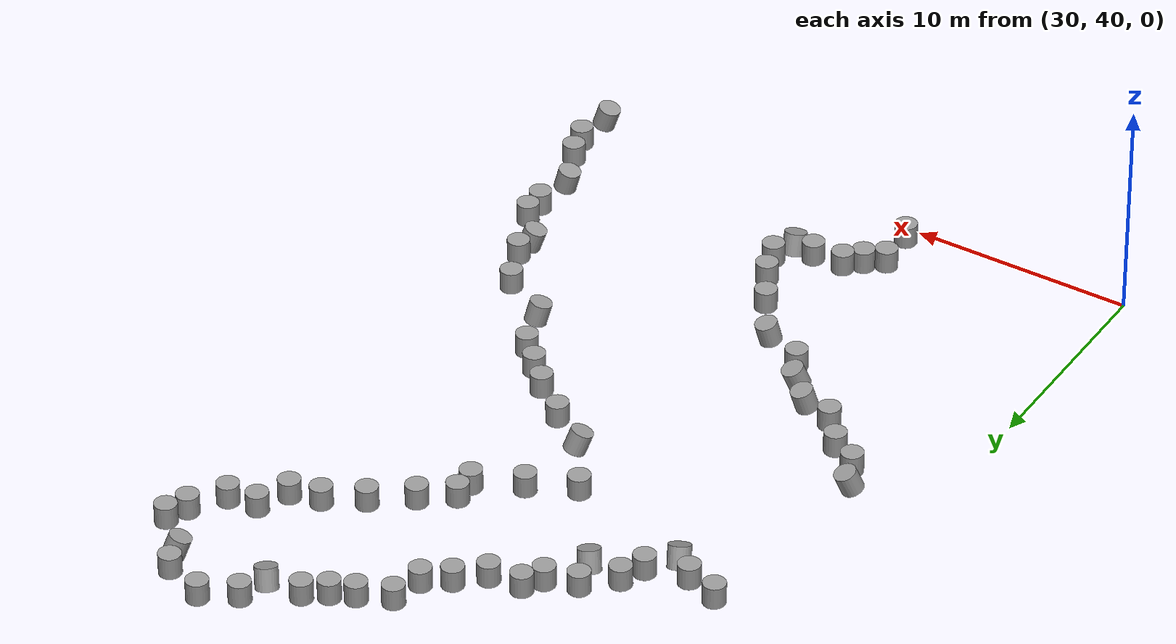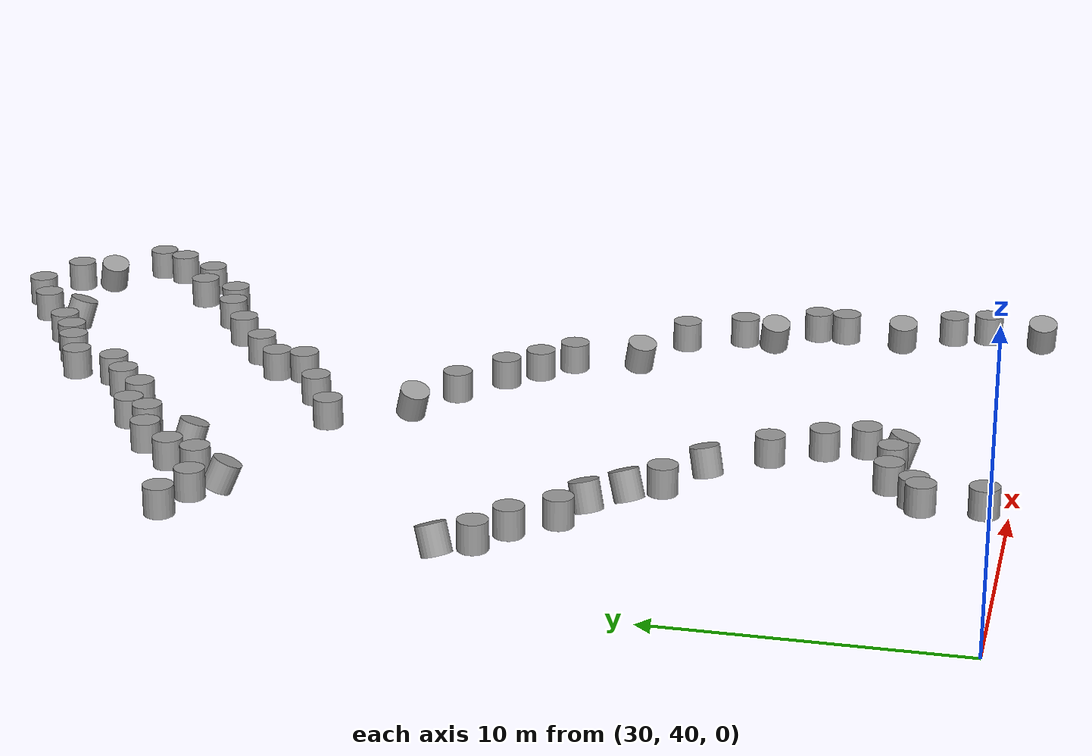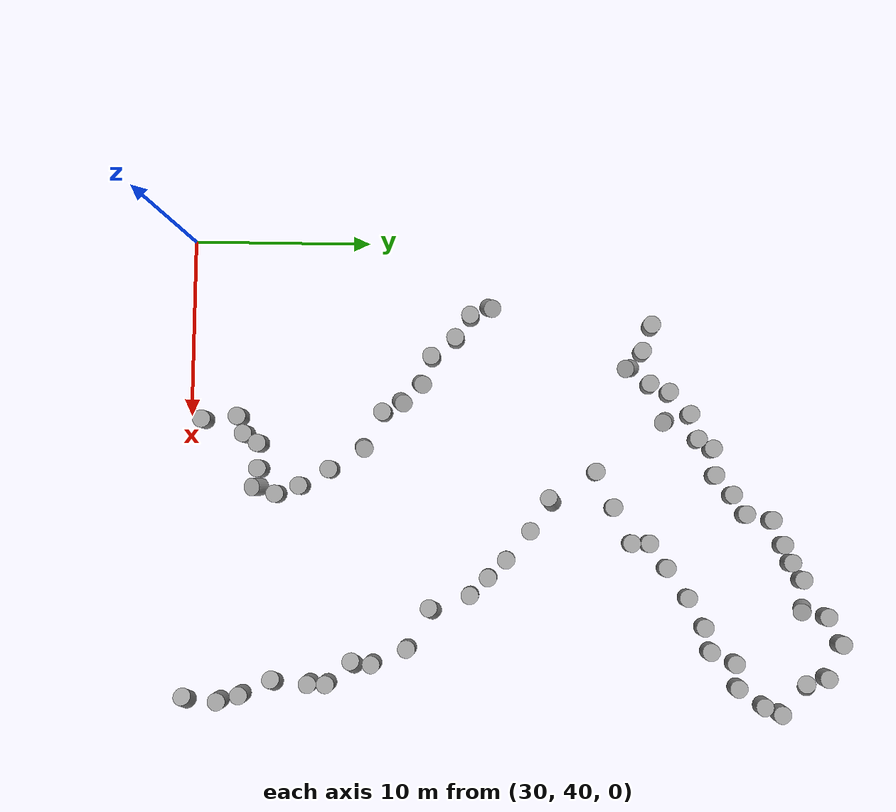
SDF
<sdf version="1.7">
 <world name="default">
  <model name="unit_cylinder_85_clone_244_clone_278">
   <pose>33.7154 56.9351 0.401347 -0.295228 0.251785 -0.052328</pose>
   <link name="link">
    <inertial>
     <mass>1</mass>
     <inertia><ixx>0.145833</ixx><ixy>0</ixy><ixz>0</ixz><iyy>0.145833</iyy><iyz>0</iyz><izz>0.125</izz></inertia>
    </inertial>
    <collision name="collision">
     <geometry><cylinder><radius>0.5</radius><length>1</length></cylinder></geometry>
    </collision>
    <visual name="visual">
     <geometry><cylinder><radius>0.5</radius><length>1</length></cylinder></geometry>
     <material>
      <script><name>Gazebo/Grey</name><uri>file://media/materials/scripts/gazebo.material</uri></script>
     </material>
    </visual>
   </link>
  </model>
  <model name="unit_cylinder_85_clone_244_clone_279">
   <pose>34.2118 55.8238 0.45004 1e-06 5e-06 0.000401</pose>
   <link name="link">
    <inertial>
     <mass>1</mass>
     <inertia><ixx>0.145833</ixx><ixy>0</ixy><ixz>0</ixz><iyy>0.145833</iyy><iyz>0</iyz><izz>0.125</izz></inertia>
    </inertial>
    <collision name="collision">
     <geometry><cylinder><radius>0.5</radius><length>1</length></cylinder></geometry>
    </collision>
    <visual name="visual">
     <geometry><cylinder><radius>0.5</radius><length>1</length></cylinder></geometry>
     <material>
      <script><name>Gazebo/Grey</name><uri>file://media/materials/scripts/gazebo.material</uri></script>
     </material>
    </visual>
   </link>
  </model>
  <model name="unit_cylinder_85_clone_244_clone_280">
   <pose>35.4906 55.0004 0.450054 -0.00038 0.000354 0.000411</pose>
   <link name="link">
    <inertial>
     <mass>1</mass>
     <inertia><ixx>0.145833</ixx><ixy>0</ixy><ixz>0</ixz><iyy>0.145833</iyy><iyz>0</iyz><izz>0.125</izz></inertia>
    </inertial>
    <collision name="collision">
     <geometry><cylinder><radius>0.5</radius><length>1</length></cylinder></geometry>
    </collision>
    <visual name="visual">
     <geometry><cylinder><radius>0.5</radius><length>1</length></cylinder></geometry>
     <material>
      <script><name>Gazebo/Grey</name><uri>file://media/materials/scripts/gazebo.material</uri></script>
     </material>
    </visual>
   </link>
  </model>
  <model name="unit_cylinder_85_clone_244_clone_281">
   <pose>36.5597 53.6582 0.450042 1e-06 -2e-06 0.000852</pose>
   <link name="link">
    <inertial>
     <mass>1</mass>
     <inertia><ixx>0.145833</ixx><ixy>0</ixy><ixz>0</ixz><iyy>0.145833</iyy><iyz>0</iyz><izz>0.125</izz></inertia>
    </inertial>
    <collision name="collision">
     <geometry><cylinder><radius>0.5</radius><length>1</length></cylinder></geometry>
    </collision>
    <visual name="visual">
     <geometry><cylinder><radius>0.5</radius><length>1</length></cylinder></geometry>
     <material>
      <script><name>Gazebo/Grey</name><uri>file://media/materials/scripts/gazebo.material</uri></script>
     </material>
    </visual>
   </link>
  </model>
  <model name="unit_cylinder_85_clone_244_clone_282">
   <pose>38.0921 53.1044 0.372479 -0.21951 0.192812 -0.029025</pose>
   <link name="link">
    <inertial>
     <mass>1</mass>
     <inertia><ixx>0.145833</ixx><ixy>0</ixy><ixz>0</ixz><iyy>0.145833</iyy><iyz>0</iyz><izz>0.125</izz></inertia>
    </inertial>
    <collision name="collision">
     <geometry><cylinder><radius>0.5</radius><length>1</length></cylinder></geometry>
    </collision>
    <visual name="visual">
     <geometry><cylinder><radius>0.5</radius><length>1</length></cylinder></geometry>
     <material>
      <script><name>Gazebo/Grey</name><uri>file://media/materials/scripts/gazebo.material</uri></script>
     </material>
    </visual>
   </link>
  </model>
  <model name="unit_cylinder_85_clone_244_clone_283">
   <pose>39.7463 50.9549 0.450049 -1e-06 8e-06 0.000412</pose>
   <link name="link">
    <inertial>
     <mass>1</mass>
     <inertia><ixx>0.145833</ixx><ixy>0</ixy><ixz>0</ixz><iyy>0.145833</iyy><iyz>0</iyz><izz>0.125</izz></inertia>
    </inertial>
    <collision name="collision">
     <geometry><cylinder><radius>0.5</radius><length>1</length></cylinder></geometry>
    </collision>
    <visual name="visual">
     <geometry><cylinder><radius>0.5</radius><length>1</length></cylinder></geometry>
     <material>
      <script><name>Gazebo/Grey</name><uri>file://media/materials/scripts/gazebo.material</uri></script>
     </material>
    </visual>
   </link>
  </model>
  <model name="unit_cylinder_85_clone_244_clone_284">
   <pose>41.7536 49.8863 0.358774 -0.188602 0.167695 -0.020141</pose>
   <link name="link">
    <inertial>
     <mass>1</mass>
     <inertia><ixx>0.145833</ixx><ixy>0</ixy><ixz>0</ixz><iyy>0.145833</iyy><iyz>0</iyz><izz>0.125</izz></inertia>
    </inertial>
    <collision name="collision">
     <geometry><cylinder><radius>0.5</radius><length>1</length></cylinder></geometry>
    </collision>
    <visual name="visual">
     <geometry><cylinder><radius>0.5</radius><length>1</length></cylinder></geometry>
     <material>
      <script><name>Gazebo/Grey</name><uri>file://media/materials/scripts/gazebo.material</uri></script>
     </material>
    </visual>
   </link>
  </model>
  <model name="unit_cylinder_85_clone_244_clone_285">
   <pose>43 48 0.450053 -1e-06 1.2e-05 0.000413</pose>
   <link name="link">
    <inertial>
     <mass>1</mass>
     <inertia><ixx>0.145833</ixx><ixy>0</ixy><ixz>0</ixz><iyy>0.145833</iyy><iyz>0</iyz><izz>0.125</izz></inertia>
    </inertial>
    <collision name="collision">
     <geometry><cylinder><radius>0.5</radius><length>1</length></cylinder></geometry>
    </collision>
    <visual name="visual">
     <geometry><cylinder><radius>0.5</radius><length>1</length></cylinder></geometry>
     <material>
      <script><name>Gazebo/Grey</name><uri>file://media/materials/scripts/gazebo.material</uri></script>
     </material>
    </visual>
   </link>
  </model>
  <model name="unit_cylinder_85_clone_244_clone_286">
   <pose>39.1416 52.0091 0.397449 -0.282988 0.244258 -0.044928</pose>
   <link name="link">
    <inertial>
     <mass>1</mass>
     <inertia><ixx>0.145833</ixx><ixy>0</ixy><ixz>0</ixz><iyy>0.145833</iyy><iyz>0</iyz><izz>0.125</izz></inertia>
    </inertial>
    <collision name="collision">
     <geometry><cylinder><radius>0.5</radius><length>1</length></cylinder></geometry>
    </collision>
    <visual name="visual">
     <geometry><cylinder><radius>0.5</radius><length>1</length></cylinder></geometry>
     <material>
      <script><name>Gazebo/Grey</name><uri>file://media/materials/scripts/gazebo.material</uri></script>
     </material>
    </visual>
   </link>
  </model>
  <model name="unit_cylinder_85_clone_244_clone_287">
   <pose>43.9423 46.3315 0.450051 -3e-06 -1e-05 0.000415</pose>
   <link name="link">
    <inertial>
     <mass>1</mass>
     <inertia><ixx>0.145833</ixx><ixy>0</ixy><ixz>0</ixz><iyy>0.145833</iyy><iyz>0</iyz><izz>0.125</izz></inertia>
    </inertial>
    <collision name="collision">
     <geometry><cylinder><radius>0.5</radius><length>1</length></cylinder></geometry>
    </collision>
    <visual name="visual">
     <geometry><cylinder><radius>0.5</radius><length>1</length></cylinder></geometry>
     <material>
      <script><name>Gazebo/Grey</name><uri>file://media/materials/scripts/gazebo.material</uri></script>
     </material>
    </visual>
   </link>
  </model>
  <model name="unit_cylinder_85_clone_244_clone_288">
   <pose>44.411 45 0.450037 1.8e-05 -3e-06 0.000486</pose>
   <link name="link">
    <inertial>
     <mass>1</mass>
     <inertia><ixx>0.145833</ixx><ixy>0</ixy><ixz>0</ixz><iyy>0.145833</iyy><iyz>0</iyz><izz>0.125</izz></inertia>
    </inertial>
    <collision name="collision">
     <geometry><cylinder><radius>0.5</radius><length>1</length></cylinder></geometry>
    </collision>
    <visual name="visual">
     <geometry><cylinder><radius>0.5</radius><length>1</length></cylinder></geometry>
     <material>
      <script><name>Gazebo/Grey</name><uri>file://media/materials/scripts/gazebo.material</uri></script>
     </material>
    </visual>
   </link>
  </model>
  <model name="unit_cylinder_85_clone_244_clone_289">
   <pose>44.0265 43.8452 0.379184 0.30818 0.046155 0.025361</pose>
   <link name="link">
    <inertial>
     <mass>1</mass>
     <inertia><ixx>0.145833</ixx><ixy>0</ixy><ixz>0</ixz><iyy>0.145833</iyy><iyz>0</iyz><izz>0.125</izz></inertia>
    </inertial>
    <collision name="collision">
     <geometry><cylinder><radius>0.5</radius><length>1</length></cylinder></geometry>
    </collision>
    <visual name="visual">
     <geometry><cylinder><radius>0.5</radius><length>1</length></cylinder></geometry>
     <material>
      <script><name>Gazebo/Grey</name><uri>file://media/materials/scripts/gazebo.material</uri></script>
     </material>
    </visual>
   </link>
  </model>
  <model name="unit_cylinder_85_clone_244_clone_290">
   <pose>42.9997 43.9999 0.450012 0.000339 6.2e-05 0.000918</pose>
   <link name="link">
    <inertial>
     <mass>1</mass>
     <inertia><ixx>0.145833</ixx><ixy>0</ixy><ixz>0</ixz><iyy>0.145833</iyy><iyz>0</iyz><izz>0.125</izz></inertia>
    </inertial>
    <collision name="collision">
     <geometry><cylinder><radius>0.5</radius><length>1</length></cylinder></geometry>
    </collision>
    <visual name="visual">
     <geometry><cylinder><radius>0.5</radius><length>1</length></cylinder></geometry>
     <material>
      <script><name>Gazebo/Grey</name><uri>file://media/materials/scripts/gazebo.material</uri></script>
     </material>
    </visual>
   </link>
  </model>
  <model name="unit_cylinder_85_clone_244_clone_291">
   <pose>41.0187 43.0978 0.250015 -6e-06 2.2e-05 0.038629</pose>
   <link name="link">
    <inertial>
     <mass>1</mass>
     <inertia><ixx>0.145833</ixx><ixy>0</ixy><ixz>0</ixz><iyy>0.145833</iyy><iyz>0</iyz><izz>0.125</izz></inertia>
    </inertial>
    <collision name="collision">
     <geometry><cylinder><radius>0.5</radius><length>1</length></cylinder></geometry>
    </collision>
    <visual name="visual">
     <geometry><cylinder><radius>0.5</radius><length>1</length></cylinder></geometry>
     <material>
      <script><name>Gazebo/Grey</name><uri>file://media/materials/scripts/gazebo.material</uri></script>
     </material>
    </visual>
   </link>
  </model>
  <model name="unit_cylinder_85_clone_244_clone_292">
   <pose>40.0673 42.7899 0.449997 -6e-06 4.9e-05 -0.081355</pose>
   <link name="link">
    <inertial>
     <mass>1</mass>
     <inertia><ixx>0.145833</ixx><ixy>0</ixy><ixz>0</ixz><iyy>0.145833</iyy><iyz>0</iyz><izz>0.125</izz></inertia>
    </inertial>
    <collision name="collision">
     <geometry><cylinder><radius>0.5</radius><length>1</length></cylinder></geometry>
    </collision>
    <visual name="visual">
     <geometry><cylinder><radius>0.5</radius><length>1</length></cylinder></geometry>
     <material>
      <script><name>Gazebo/Grey</name><uri>file://media/materials/scripts/gazebo.material</uri></script>
     </material>
    </visual>
   </link>
  </model>
  <model name="unit_cylinder_85_clone_244_clone_293">
   <pose>41.5678 43.956 0.450025 1.5e-05 -2e-06 -0.079999</pose>
   <link name="link">
    <inertial>
     <mass>1</mass>
     <inertia><ixx>0.145833</ixx><ixy>0</ixy><ixz>0</ixz><iyy>0.145833</iyy><iyz>0</iyz><izz>0.125</izz></inertia>
    </inertial>
    <collision name="collision">
     <geometry><cylinder><radius>0.5</radius><length>1</length></cylinder></geometry>
    </collision>
    <visual name="visual">
     <geometry><cylinder><radius>0.5</radius><length>1</length></cylinder></geometry>
     <material>
      <script><name>Gazebo/Grey</name><uri>file://media/materials/scripts/gazebo.material</uri></script>
     </material>
    </visual>
   </link>
  </model>
  <model name="unit_cylinder_85_clone_244_clone_294">
   <pose>40.2405 40.8025 0.450037 -1.2e-05 5e-06 0.00041</pose>
   <link name="link">
    <inertial>
     <mass>1</mass>
     <inertia><ixx>0.145833</ixx><ixy>0</ixy><ixz>0</ixz><iyy>0.145833</iyy><iyz>0</iyz><izz>0.125</izz></inertia>
    </inertial>
    <collision name="collision">
     <geometry><cylinder><radius>0.5</radius><length>1</length></cylinder></geometry>
    </collision>
    <visual name="visual">
     <geometry><cylinder><radius>0.5</radius><length>1</length></cylinder></geometry>
     <material>
      <script><name>Gazebo/Grey</name><uri>file://media/materials/scripts/gazebo.material</uri></script>
     </material>
    </visual>
   </link>
  </model>
  <model name="unit_cylinder_85_clone_244_clone_337">
   <pose>34.6619 66.079 0.456652 0.003726 -0.003602 0.000687</pose>
   <link name="link">
    <inertial>
     <mass>1</mass>
     <inertia><ixx>0.145833</ixx><ixy>0</ixy><ixz>0</ixz><iyy>0.145833</iyy><iyz>0</iyz><izz>0.125</izz></inertia>
    </inertial>
    <collision name="collision">
     <geometry><cylinder><radius>0.5</radius><length>1</length></cylinder></geometry>
    </collision>
    <visual name="visual">
     <geometry><cylinder><radius>0.5</radius><length>1</length></cylinder></geometry>
     <material>
      <script><name>Gazebo/Grey</name><uri>file://media/materials/scripts/gazebo.material</uri></script>
     </material>
    </visual>
   </link>
  </model>
  <model name="unit_cylinder_85_clone_244_clone_338">
   <pose>37.0888 64.7965 0.411942 0.394273 0.165878 0.059259</pose>
   <link name="link">
    <inertial>
     <mass>1</mass>
     <inertia><ixx>0.145833</ixx><ixy>0</ixy><ixz>0</ixz><iyy>0.145833</iyy><iyz>0</iyz><izz>0.125</izz></inertia>
    </inertial>
    <collision name="collision">
     <geometry><cylinder><radius>0.5</radius><length>1</length></cylinder></geometry>
    </collision>
    <visual name="visual">
     <geometry><cylinder><radius>0.5</radius><length>1</length></cylinder></geometry>
     <material>
      <script><name>Gazebo/Grey</name><uri>file://media/materials/scripts/gazebo.material</uri></script>
     </material>
    </visual>
   </link>
  </model>
  <model name="unit_cylinder_85_clone_244_clone_339">
   <pose>38.0015 65.9983 0.452402 0.003156 0.002335 0.000786</pose>
   <link name="link">
    <inertial>
     <mass>1</mass>
     <inertia><ixx>0.145833</ixx><ixy>0</ixy><ixz>0</ixz><iyy>0.145833</iyy><iyz>0</iyz><izz>0.125</izz></inertia>
    </inertial>
    <collision name="collision">
     <geometry><cylinder><radius>0.5</radius><length>1</length></cylinder></geometry>
    </collision>
    <visual name="visual">
     <geometry><cylinder><radius>0.5</radius><length>1</length></cylinder></geometry>
     <material>
      <script><name>Gazebo/Grey</name><uri>file://media/materials/scripts/gazebo.material</uri></script>
     </material>
    </visual>
   </link>
  </model>
  <model name="unit_cylinder_85_clone_244_clone_340">
   <pose>40.0993 66.8648 0.38748 0.275919 0.197597 0.03147</pose>
   <link name="link">
    <inertial>
     <mass>1</mass>
     <inertia><ixx>0.145833</ixx><ixy>0</ixy><ixz>0</ixz><iyy>0.145833</iyy><iyz>0</iyz><izz>0.125</izz></inertia>
    </inertial>
    <collision name="collision">
     <geometry><cylinder><radius>0.5</radius><length>1</length></cylinder></geometry>
    </collision>
    <visual name="visual">
     <geometry><cylinder><radius>0.5</radius><length>1</length></cylinder></geometry>
     <material>
      <script><name>Gazebo/Grey</name><uri>file://media/materials/scripts/gazebo.material</uri></script>
     </material>
    </visual>
   </link>
  </model>
  <model name="unit_cylinder_85_clone_244_clone_341">
   <pose>43.1257 69.7006 0.451301 1e-06 7e-06 0.000423</pose>
   <link name="link">
    <inertial>
     <mass>1</mass>
     <inertia><ixx>0.145833</ixx><ixy>0</ixy><ixz>0</ixz><iyy>0.145833</iyy><iyz>0</iyz><izz>0.125</izz></inertia>
    </inertial>
    <collision name="collision">
     <geometry><cylinder><radius>0.5</radius><length>1</length></cylinder></geometry>
    </collision>
    <visual name="visual">
     <geometry><cylinder><radius>0.5</radius><length>1</length></cylinder></geometry>
     <material>
      <script><name>Gazebo/Grey</name><uri>file://media/materials/scripts/gazebo.material</uri></script>
     </material>
    </visual>
   </link>
  </model>
  <model name="unit_cylinder_85_clone_244_clone_342">
   <pose>45.3006 71.4298 0.451297 3e-06 5e-06 0.000423</pose>
   <link name="link">
    <inertial>
     <mass>1</mass>
     <inertia><ixx>0.145833</ixx><ixy>0</ixy><ixz>0</ixz><iyy>0.145833</iyy><iyz>0</iyz><izz>0.125</izz></inertia>
    </inertial>
    <collision name="collision">
     <geometry><cylinder><radius>0.5</radius><length>1</length></cylinder></geometry>
    </collision>
    <visual name="visual">
     <geometry><cylinder><radius>0.5</radius><length>1</length></cylinder></geometry>
     <material>
      <script><name>Gazebo/Grey</name><uri>file://media/materials/scripts/gazebo.material</uri></script>
     </material>
    </visual>
   </link>
  </model>
  <model name="unit_cylinder_85_clone_244_clone_344">
   <pose>50.6179 74.6493 0.385512 0.270314 0.194345 0.029019</pose>
   <link name="link">
    <inertial>
     <mass>1</mass>
     <inertia><ixx>0.145833</ixx><ixy>0</ixy><ixz>0</ixz><iyy>0.145833</iyy><iyz>0</iyz><izz>0.125</izz></inertia>
    </inertial>
    <collision name="collision">
     <geometry><cylinder><radius>0.5</radius><length>1</length></cylinder></geometry>
    </collision>
    <visual name="visual">
     <geometry><cylinder><radius>0.5</radius><length>1</length></cylinder></geometry>
     <material>
      <script><name>Gazebo/Grey</name><uri>file://media/materials/scripts/gazebo.material</uri></script>
     </material>
    </visual>
   </link>
  </model>
  <model name="unit_cylinder_85_clone_244_clone_345">
   <pose>52.5133 76.813 0.45129 7e-06 1e-06 0.000423</pose>
   <link name="link">
    <inertial>
     <mass>1</mass>
     <inertia><ixx>0.145833</ixx><ixy>0</ixy><ixz>0</ixz><iyy>0.145833</iyy><iyz>0</iyz><izz>0.125</izz></inertia>
    </inertial>
    <collision name="collision">
     <geometry><cylinder><radius>0.5</radius><length>1</length></cylinder></geometry>
    </collision>
    <visual name="visual">
     <geometry><cylinder><radius>0.5</radius><length>1</length></cylinder></geometry>
     <material>
      <script><name>Gazebo/Grey</name><uri>file://media/materials/scripts/gazebo.material</uri></script>
     </material>
    </visual>
   </link>
  </model>
  <model name="unit_cylinder_85_clone_244_clone_346">
   <pose>54.415 76 0.451281 3.5e-05 -4e-05 0.000342</pose>
   <link name="link">
    <inertial>
     <mass>1</mass>
     <inertia><ixx>0.145833</ixx><ixy>0</ixy><ixz>0</ixz><iyy>0.145833</iyy><iyz>0</iyz><izz>0.125</izz></inertia>
    </inertial>
    <collision name="collision">
     <geometry><cylinder><radius>0.5</radius><length>1</length></cylinder></geometry>
    </collision>
    <visual name="visual">
     <geometry><cylinder><radius>0.5</radius><length>1</length></cylinder></geometry>
     <material>
      <script><name>Gazebo/Grey</name><uri>file://media/materials/scripts/gazebo.material</uri></script>
     </material>
    </visual>
   </link>
  </model>
  <model name="unit_cylinder_85_clone_244_clone_347">
   <pose>56.4101 73.4188 0.451404 -0.000343 1.6e-05 0.001553</pose>
   <link name="link">
    <inertial>
     <mass>1</mass>
     <inertia><ixx>0.145833</ixx><ixy>0</ixy><ixz>0</ixz><iyy>0.145833</iyy><iyz>0</iyz><izz>0.125</izz></inertia>
    </inertial>
    <collision name="collision">
     <geometry><cylinder><radius>0.5</radius><length>1</length></cylinder></geometry>
    </collision>
    <visual name="visual">
     <geometry><cylinder><radius>0.5</radius><length>1</length></cylinder></geometry>
     <material>
      <script><name>Gazebo/Grey</name><uri>file://media/materials/scripts/gazebo.material</uri></script>
     </material>
    </visual>
   </link>
  </model>
  <model name="unit_cylinder_85_clone_244_clone_348">
   <pose>56 72.4474 0.452031 -0.000916 6.3e-05 0.000435</pose>
   <link name="link">
    <inertial>
     <mass>1</mass>
     <inertia><ixx>0.145833</ixx><ixy>0</ixy><ixz>0</ixz><iyy>0.145833</iyy><iyz>0</iyz><izz>0.125</izz></inertia>
    </inertial>
    <collision name="collision">
     <geometry><cylinder><radius>0.5</radius><length>1</length></cylinder></geometry>
    </collision>
    <visual name="visual">
     <geometry><cylinder><radius>0.5</radius><length>1</length></cylinder></geometry>
     <material>
      <script><name>Gazebo/Grey</name><uri>file://media/materials/scripts/gazebo.material</uri></script>
     </material>
    </visual>
   </link>
  </model>
  <model name="unit_cylinder_85_clone_244_clone_349">
   <pose>53.6468 70.8564 0.452218 -0.002738 -0.002069 1.7e-05</pose>
   <link name="link">
    <inertial>
     <mass>1</mass>
     <inertia><ixx>0.145833</ixx><ixy>0</ixy><ixz>0</ixz><iyy>0.145833</iyy><iyz>0</iyz><izz>0.125</izz></inertia>
    </inertial>
    <collision name="collision">
     <geometry><cylinder><radius>0.5</radius><length>1</length></cylinder></geometry>
    </collision>
    <visual name="visual">
     <geometry><cylinder><radius>0.5</radius><length>1</length></cylinder></geometry>
     <material>
      <script><name>Gazebo/Grey</name><uri>file://media/materials/scripts/gazebo.material</uri></script>
     </material>
    </visual>
   </link>
  </model>
  <model name="unit_cylinder_85_clone_244_clone_350">
   <pose>51.6547 69.1214 0.452898 -0.002829 -0.002136 0.000353</pose>
   <link name="link">
    <inertial>
     <mass>1</mass>
     <inertia><ixx>0.145833</ixx><ixy>0</ixy><ixz>0</ixz><iyy>0.145833</iyy><iyz>0</iyz><izz>0.125</izz></inertia>
    </inertial>
    <collision name="collision">
     <geometry><cylinder><radius>0.5</radius><length>1</length></cylinder></geometry>
    </collision>
    <visual name="visual">
     <geometry><cylinder><radius>0.5</radius><length>1</length></cylinder></geometry>
     <material>
      <script><name>Gazebo/Grey</name><uri>file://media/materials/scripts/gazebo.material</uri></script>
     </material>
    </visual>
   </link>
  </model>
  <model name="unit_cylinder_85_clone_244_clone_351">
   <pose>50.0233 68.1917 0.452006 -0.002697 -0.002038 9.9e-05</pose>
   <link name="link">
    <inertial>
     <mass>1</mass>
     <inertia><ixx>0.145833</ixx><ixy>0</ixy><ixz>0</ixz><iyy>0.145833</iyy><iyz>0</iyz><izz>0.125</izz></inertia>
    </inertial>
    <collision name="collision">
     <geometry><cylinder><radius>0.5</radius><length>1</length></cylinder></geometry>
    </collision>
    <visual name="visual">
     <geometry><cylinder><radius>0.5</radius><length>1</length></cylinder></geometry>
     <material>
      <script><name>Gazebo/Grey</name><uri>file://media/materials/scripts/gazebo.material</uri></script>
     </material>
    </visual>
   </link>
  </model>
  <model name="unit_cylinder_85_clone_244_clone_352">
   <pose>48.3632 66.9975 0.451832 -0.002657 -0.002013 0.000176</pose>
   <link name="link">
    <inertial>
     <mass>1</mass>
     <inertia><ixx>0.145833</ixx><ixy>0</ixy><ixz>0</ixz><iyy>0.145833</iyy><iyz>0</iyz><izz>0.125</izz></inertia>
    </inertial>
    <collision name="collision">
     <geometry><cylinder><radius>0.5</radius><length>1</length></cylinder></geometry>
    </collision>
    <visual name="visual">
     <geometry><cylinder><radius>0.5</radius><length>1</length></cylinder></geometry>
     <material>
      <script><name>Gazebo/Grey</name><uri>file://media/materials/scripts/gazebo.material</uri></script>
     </material>
    </visual>
   </link>
  </model>
  <model name="unit_cylinder_85_clone_244_clone_353">
   <pose>47.0017 66.0153 0.451804 -0.003229 -0.002361 0.014342</pose>
   <link name="link">
    <inertial>
     <mass>1</mass>
     <inertia><ixx>0.145833</ixx><ixy>0</ixy><ixz>0</ixz><iyy>0.145833</iyy><iyz>0</iyz><izz>0.125</izz></inertia>
    </inertial>
    <collision name="collision">
     <geometry><cylinder><radius>0.5</radius><length>1</length></cylinder></geometry>
    </collision>
    <visual name="visual">
     <geometry><cylinder><radius>0.5</radius><length>1</length></cylinder></geometry>
     <material>
      <script><name>Gazebo/Grey</name><uri>file://media/materials/scripts/gazebo.material</uri></script>
     </material>
    </visual>
   </link>
  </model>
  <model name="unit_cylinder_85_clone_244_clone_354">
   <pose>44.9985 64.0017 0.453101 -0.002956 -0.002234 2.6e-05</pose>
   <link name="link">
    <inertial>
     <mass>1</mass>
     <inertia><ixx>0.145833</ixx><ixy>0</ixy><ixz>0</ixz><iyy>0.145833</iyy><iyz>0</iyz><izz>0.125</izz></inertia>
    </inertial>
    <collision name="collision">
     <geometry><cylinder><radius>0.5</radius><length>1</length></cylinder></geometry>
    </collision>
    <visual name="visual">
     <geometry><cylinder><radius>0.5</radius><length>1</length></cylinder></geometry>
     <material>
      <script><name>Gazebo/Grey</name><uri>file://media/materials/scripts/gazebo.material</uri></script>
     </material>
    </visual>
   </link>
  </model>
  <model name="unit_cylinder_85_clone_244_clone_355">
   <pose>42.9987 63.0017 0.451666 -0.002532 -0.001908 0.000236</pose>
   <link name="link">
    <inertial>
     <mass>1</mass>
     <inertia><ixx>0.145833</ixx><ixy>0</ixy><ixz>0</ixz><iyy>0.145833</iyy><iyz>0</iyz><izz>0.125</izz></inertia>
    </inertial>
    <collision name="collision">
     <geometry><cylinder><radius>0.5</radius><length>1</length></cylinder></geometry>
    </collision>
    <visual name="visual">
     <geometry><cylinder><radius>0.5</radius><length>1</length></cylinder></geometry>
     <material>
      <script><name>Gazebo/Grey</name><uri>file://media/materials/scripts/gazebo.material</uri></script>
     </material>
    </visual>
   </link>
  </model>
  <model name="unit_cylinder_85_clone_244_clone_356">
   <pose>46.998 65.0153 0.454543 -0.003213 -0.00243 -0.000141</pose>
   <link name="link">
    <inertial>
     <mass>1</mass>
     <inertia><ixx>0.145833</ixx><ixy>0</ixy><ixz>0</ixz><iyy>0.145833</iyy><iyz>0</iyz><izz>0.125</izz></inertia>
    </inertial>
    <collision name="collision">
     <geometry><cylinder><radius>0.5</radius><length>1</length></cylinder></geometry>
    </collision>
    <visual name="visual">
     <geometry><cylinder><radius>0.5</radius><length>1</length></cylinder></geometry>
     <material>
      <script><name>Gazebo/Grey</name><uri>file://media/materials/scripts/gazebo.material</uri></script>
     </material>
    </visual>
   </link>
  </model>
  <model name="unit_cylinder_85_clone_244_clone_357">
   <pose>52.9976 69.4652 0.454805 -0.003182 -0.002405 0.000416</pose>
   <link name="link">
    <inertial>
     <mass>1</mass>
     <inertia><ixx>0.145833</ixx><ixy>0</ixy><ixz>0</ixz><iyy>0.145833</iyy><iyz>0</iyz><izz>0.125</izz></inertia>
    </inertial>
    <collision name="collision">
     <geometry><cylinder><radius>0.5</radius><length>1</length></cylinder></geometry>
    </collision>
    <visual name="visual">
     <geometry><cylinder><radius>0.5</radius><length>1</length></cylinder></geometry>
     <material>
      <script><name>Gazebo/Grey</name><uri>file://media/materials/scripts/gazebo.material</uri></script>
     </material>
    </visual>
   </link>
  </model>
  <model name="unit_cylinder_85_clone_244_clone_358">
   <pose>55 71.0006 0.453414 -0.000912 6.5e-05 0.000431</pose>
   <link name="link">
    <inertial>
     <mass>1</mass>
     <inertia><ixx>0.145833</ixx><ixy>0</ixy><ixz>0</ixz><iyy>0.145833</iyy><iyz>0</iyz><izz>0.125</izz></inertia>
    </inertial>
    <collision name="collision">
     <geometry><cylinder><radius>0.5</radius><length>1</length></cylinder></geometry>
    </collision>
    <visual name="visual">
     <geometry><cylinder><radius>0.5</radius><length>1</length></cylinder></geometry>
     <material>
      <script><name>Gazebo/Grey</name><uri>file://media/materials/scripts/gazebo.material</uri></script>
     </material>
    </visual>
   </link>
  </model>
  <model name="unit_cylinder_85_clone_244_clone_359">
   <pose>51 76 0.451293 6e-06 5e-06 0.000426</pose>
   <link name="link">
    <inertial>
     <mass>1</mass>
     <inertia><ixx>0.145833</ixx><ixy>0</ixy><ixz>0</ixz><iyy>0.145833</iyy><iyz>0</iyz><izz>0.125</izz></inertia>
    </inertial>
    <collision name="collision">
     <geometry><cylinder><radius>0.5</radius><length>1</length></cylinder></geometry>
    </collision>
    <visual name="visual">
     <geometry><cylinder><radius>0.5</radius><length>1</length></cylinder></geometry>
     <material>
      <script><name>Gazebo/Grey</name><uri>file://media/materials/scripts/gazebo.material</uri></script>
     </material>
    </visual>
   </link>
  </model>
  <model name="unit_cylinder_85_clone_244_clone_360">
   <pose>48 74 0.4513 3e-06 -2e-06 0.000443</pose>
   <link name="link">
    <inertial>
     <mass>1</mass>
     <inertia><ixx>0.145833</ixx><ixy>0</ixy><ixz>0</ixz><iyy>0.145833</iyy><iyz>0</iyz><izz>0.125</izz></inertia>
    </inertial>
    <collision name="collision">
     <geometry><cylinder><radius>0.5</radius><length>1</length></cylinder></geometry>
    </collision>
    <visual name="visual">
     <geometry><cylinder><radius>0.5</radius><length>1</length></cylinder></geometry>
     <material>
      <script><name>Gazebo/Grey</name><uri>file://media/materials/scripts/gazebo.material</uri></script>
     </material>
    </visual>
   </link>
  </model>
  <model name="unit_cylinder_85_clone_244_clone_361">
   <pose>54.8521 74.8881 0.395211 0.23433 -0.280983 -0.020812</pose>
   <link name="link">
    <inertial>
     <mass>1</mass>
     <inertia><ixx>0.145833</ixx><ixy>0</ixy><ixz>0</ixz><iyy>0.145833</iyy><iyz>0</iyz><izz>0.125</izz></inertia>
    </inertial>
    <collision name="collision">
     <geometry><cylinder><radius>0.5</radius><length>1</length></cylinder></geometry>
    </collision>
    <visual name="visual">
     <geometry><cylinder><radius>0.5</radius><length>1</length></cylinder></geometry>
     <material>
      <script><name>Gazebo/Grey</name><uri>file://media/materials/scripts/gazebo.material</uri></script>
     </material>
    </visual>
   </link>
  </model>
  <model name="unit_cylinder_85_clone_244_clone_362">
   <pose>41.0927 68.7209 0.452616 0.00192 0.00179 0.001626</pose>
   <link name="link">
    <inertial>
     <mass>1</mass>
     <inertia><ixx>0.145833</ixx><ixy>0</ixy><ixz>0</ixz><iyy>0.145833</iyy><iyz>0</iyz><izz>0.125</izz></inertia>
    </inertial>
    <collision name="collision">
     <geometry><cylinder><radius>0.5</radius><length>1</length></cylinder></geometry>
    </collision>
    <visual name="visual">
     <geometry><cylinder><radius>0.5</radius><length>1</length></cylinder></geometry>
     <material>
      <script><name>Gazebo/Grey</name><uri>file://media/materials/scripts/gazebo.material</uri></script>
     </material>
    </visual>
   </link>
  </model>
  <model name="unit_cylinder_85_clone_244_clone_363">
   <pose>44.6286 60.4761 0.396885 0.260658 -0.265217 -0.030522</pose>
   <link name="link">
    <inertial>
     <mass>1</mass>
     <inertia><ixx>0.145833</ixx><ixy>0</ixy><ixz>0</ixz><iyy>0.145833</iyy><iyz>0</iyz><izz>0.125</izz></inertia>
    </inertial>
    <collision name="collision">
     <geometry><cylinder><radius>0.5</radius><length>1</length></cylinder></geometry>
    </collision>
    <visual name="visual">
     <geometry><cylinder><radius>0.5</radius><length>1</length></cylinder></geometry>
     <material>
      <script><name>Gazebo/Grey</name><uri>file://media/materials/scripts/gazebo.material</uri></script>
     </material>
    </visual>
   </link>
  </model>
  <model name="unit_cylinder_85_clone_244_clone_364">
   <pose>46.3679 59.3387 0.45226 0.00287 -0.002997 -3e-06</pose>
   <link name="link">
    <inertial>
     <mass>1</mass>
     <inertia><ixx>0.145833</ixx><ixy>0</ixy><ixz>0</ixz><iyy>0.145833</iyy><iyz>0</iyz><izz>0.125</izz></inertia>
    </inertial>
    <collision name="collision">
     <geometry><cylinder><radius>0.5</radius><length>1</length></cylinder></geometry>
    </collision>
    <visual name="visual">
     <geometry><cylinder><radius>0.5</radius><length>1</length></cylinder></geometry>
     <material>
      <script><name>Gazebo/Grey</name><uri>file://media/materials/scripts/gazebo.material</uri></script>
     </material>
    </visual>
   </link>
  </model>
  <model name="unit_cylinder_85_clone_244_clone_365">
   <pose>47.9973 57.9991 0.45339 0.002997 -0.003133 5e-06</pose>
   <link name="link">
    <inertial>
     <mass>1</mass>
     <inertia><ixx>0.145833</ixx><ixy>0</ixy><ixz>0</ixz><iyy>0.145833</iyy><iyz>0</iyz><izz>0.125</izz></inertia>
    </inertial>
    <collision name="collision">
     <geometry><cylinder><radius>0.5</radius><length>1</length></cylinder></geometry>
    </collision>
    <visual name="visual">
     <geometry><cylinder><radius>0.5</radius><length>1</length></cylinder></geometry>
     <material>
      <script><name>Gazebo/Grey</name><uri>file://media/materials/scripts/gazebo.material</uri></script>
     </material>
    </visual>
   </link>
  </model>
  <model name="unit_cylinder_85_clone_244_clone_366">
   <pose>48.9981 56.9982 0.453486 0.003042 -0.003253 -0.000467</pose>
   <link name="link">
    <inertial>
     <mass>1</mass>
     <inertia><ixx>0.145833</ixx><ixy>0</ixy><ixz>0</ixz><iyy>0.145833</iyy><iyz>0</iyz><izz>0.125</izz></inertia>
    </inertial>
    <collision name="collision">
     <geometry><cylinder><radius>0.5</radius><length>1</length></cylinder></geometry>
    </collision>
    <visual name="visual">
     <geometry><cylinder><radius>0.5</radius><length>1</length></cylinder></geometry>
     <material>
      <script><name>Gazebo/Grey</name><uri>file://media/materials/scripts/gazebo.material</uri></script>
     </material>
    </visual>
   </link>
  </model>
  <model name="unit_cylinder_85_clone_244_clone_367">
   <pose>49.9933 55.9915 0.453549 0.003142 -0.003318 -0.002769</pose>
   <link name="link">
    <inertial>
     <mass>1</mass>
     <inertia><ixx>0.145833</ixx><ixy>0</ixy><ixz>0</ixz><iyy>0.145833</iyy><iyz>0</iyz><izz>0.125</izz></inertia>
    </inertial>
    <collision name="collision">
     <geometry><cylinder><radius>0.5</radius><length>1</length></cylinder></geometry>
    </collision>
    <visual name="visual">
     <geometry><cylinder><radius>0.5</radius><length>1</length></cylinder></geometry>
     <material>
      <script><name>Gazebo/Grey</name><uri>file://media/materials/scripts/gazebo.material</uri></script>
     </material>
    </visual>
   </link>
  </model>
  <model name="unit_cylinder_85_clone_244_clone_368">
   <pose>50.8172 53.7976 0.366349 0.185844 -0.201402 -0.014196</pose>
   <link name="link">
    <inertial>
     <mass>1</mass>
     <inertia><ixx>0.145833</ixx><ixy>0</ixy><ixz>0</ixz><iyy>0.145833</iyy><iyz>0</iyz><izz>0.125</izz></inertia>
    </inertial>
    <collision name="collision">
     <geometry><cylinder><radius>0.5</radius><length>1</length></cylinder></geometry>
    </collision>
    <visual name="visual">
     <geometry><cylinder><radius>0.5</radius><length>1</length></cylinder></geometry>
     <material>
      <script><name>Gazebo/Grey</name><uri>file://media/materials/scripts/gazebo.material</uri></script>
     </material>
    </visual>
   </link>
  </model>
  <model name="unit_cylinder_85_clone_244_clone_369">
   <pose>52.9973 52.5003 0.453351 0.002605 -0.00354 0.002523</pose>
   <link name="link">
    <inertial>
     <mass>1</mass>
     <inertia><ixx>0.145833</ixx><ixy>0</ixy><ixz>0</ixz><iyy>0.145833</iyy><iyz>0</iyz><izz>0.125</izz></inertia>
    </inertial>
    <collision name="collision">
     <geometry><cylinder><radius>0.5</radius><length>1</length></cylinder></geometry>
    </collision>
    <visual name="visual">
     <geometry><cylinder><radius>0.5</radius><length>1</length></cylinder></geometry>
     <material>
      <script><name>Gazebo/Grey</name><uri>file://media/materials/scripts/gazebo.material</uri></script>
     </material>
    </visual>
   </link>
  </model>
  <model name="unit_cylinder_85_clone_244_clone_370">
   <pose>53.8749 50.5475 0.452175 0.002042 -0.003582 0.000271</pose>
   <link name="link">
    <inertial>
     <mass>1</mass>
     <inertia><ixx>0.145833</ixx><ixy>0</ixy><ixz>0</ixz><iyy>0.145833</iyy><iyz>0</iyz><izz>0.125</izz></inertia>
    </inertial>
    <collision name="collision">
     <geometry><cylinder><radius>0.5</radius><length>1</length></cylinder></geometry>
    </collision>
    <visual name="visual">
     <geometry><cylinder><radius>0.5</radius><length>1</length></cylinder></geometry>
     <material>
      <script><name>Gazebo/Grey</name><uri>file://media/materials/scripts/gazebo.material</uri></script>
     </material>
    </visual>
   </link>
  </model>
  <model name="unit_cylinder_85_clone_244_clone_371">
   <pose>53.8514 49.4616 0.382882 0.127464 -0.297709 -0.004982</pose>
   <link name="link">
    <inertial>
     <mass>1</mass>
     <inertia><ixx>0.145833</ixx><ixy>0</ixy><ixz>0</ixz><iyy>0.145833</iyy><iyz>0</iyz><izz>0.125</izz></inertia>
    </inertial>
    <collision name="collision">
     <geometry><cylinder><radius>0.5</radius><length>1</length></cylinder></geometry>
    </collision>
    <visual name="visual">
     <geometry><cylinder><radius>0.5</radius><length>1</length></cylinder></geometry>
     <material>
      <script><name>Gazebo/Grey</name><uri>file://media/materials/scripts/gazebo.material</uri></script>
     </material>
    </visual>
   </link>
  </model>
  <model name="unit_cylinder_85_clone_244_clone_372">
   <pose>54.9926 48.0282 0.452472 0.000545 -0.00377 -0.013775</pose>
   <link name="link">
    <inertial>
     <mass>1</mass>
     <inertia><ixx>0.145833</ixx><ixy>0</ixy><ixz>0</ixz><iyy>0.145833</iyy><iyz>0</iyz><izz>0.125</izz></inertia>
    </inertial>
    <collision name="collision">
     <geometry><cylinder><radius>0.5</radius><length>1</length></cylinder></geometry>
    </collision>
    <visual name="visual">
     <geometry><cylinder><radius>0.5</radius><length>1</length></cylinder></geometry>
     <material>
      <script><name>Gazebo/Grey</name><uri>file://media/materials/scripts/gazebo.material</uri></script>
     </material>
    </visual>
   </link>
  </model>
  <model name="unit_cylinder_85_clone_244_clone_373">
   <pose>54.9939 47.0282 0.45146 0.000492 -0.002144 -0.000722</pose>
   <link name="link">
    <inertial>
     <mass>1</mass>
     <inertia><ixx>0.145833</ixx><ixy>0</ixy><ixz>0</ixz><iyy>0.145833</iyy><iyz>0</iyz><izz>0.125</izz></inertia>
    </inertial>
    <collision name="collision">
     <geometry><cylinder><radius>0.5</radius><length>1</length></cylinder></geometry>
    </collision>
    <visual name="visual">
     <geometry><cylinder><radius>0.5</radius><length>1</length></cylinder></geometry>
     <material>
      <script><name>Gazebo/Grey</name><uri>file://media/materials/scripts/gazebo.material</uri></script>
     </material>
    </visual>
   </link>
  </model>
  <model name="unit_cylinder_85_clone_244_clone_374">
   <pose>54.8838 44.9821 0.359826 0.044782 -0.250761 0.003448</pose>
   <link name="link">
    <inertial>
     <mass>1</mass>
     <inertia><ixx>0.145833</ixx><ixy>0</ixy><ixz>0</ixz><iyy>0.145833</iyy><iyz>0</iyz><izz>0.125</izz></inertia>
    </inertial>
    <collision name="collision">
     <geometry><cylinder><radius>0.5</radius><length>1</length></cylinder></geometry>
    </collision>
    <visual name="visual">
     <geometry><cylinder><radius>0.5</radius><length>1</length></cylinder></geometry>
     <material>
      <script><name>Gazebo/Grey</name><uri>file://media/materials/scripts/gazebo.material</uri></script>
     </material>
    </visual>
   </link>
  </model>
  <model name="unit_cylinder_85_clone_244_clone_375">
   <pose>55.6519 43.2209 0.451271 -3e-06 5.6e-05 0.00049</pose>
   <link name="link">
    <inertial>
     <mass>1</mass>
     <inertia><ixx>0.145833</ixx><ixy>0</ixy><ixz>0</ixz><iyy>0.145833</iyy><iyz>0</iyz><izz>0.125</izz></inertia>
    </inertial>
    <collision name="collision">
     <geometry><cylinder><radius>0.5</radius><length>1</length></cylinder></geometry>
    </collision>
    <visual name="visual">
     <geometry><cylinder><radius>0.5</radius><length>1</length></cylinder></geometry>
     <material>
      <script><name>Gazebo/Grey</name><uri>file://media/materials/scripts/gazebo.material</uri></script>
     </material>
    </visual>
   </link>
  </model>
  <model name="unit_cylinder_85_clone_244_clone_376">
   <pose>56.0001 41.9999 0.451269 -9e-06 5.1e-05 0.00069</pose>
   <link name="link">
    <inertial>
     <mass>1</mass>
     <inertia><ixx>0.145833</ixx><ixy>0</ixy><ixz>0</ixz><iyy>0.145833</iyy><iyz>0</iyz><izz>0.125</izz></inertia>
    </inertial>
    <collision name="collision">
     <geometry><cylinder><radius>0.5</radius><length>1</length></cylinder></geometry>
    </collision>
    <visual name="visual">
     <geometry><cylinder><radius>0.5</radius><length>1</length></cylinder></geometry>
     <material>
      <script><name>Gazebo/Grey</name><uri>file://media/materials/scripts/gazebo.material</uri></script>
     </material>
    </visual>
   </link>
  </model>
  <model name="unit_cylinder_85_clone_244_clone_377">
   <pose>55.8994 40.0875 0.379054 0.058428 -0.305748 -0.009824</pose>
   <link name="link">
    <inertial>
     <mass>1</mass>
     <inertia><ixx>0.145833</ixx><ixy>0</ixy><ixz>0</ixz><iyy>0.145833</iyy><iyz>0</iyz><izz>0.125</izz></inertia>
    </inertial>
    <collision name="collision">
     <geometry><cylinder><radius>0.5</radius><length>1</length></cylinder></geometry>
    </collision>
    <visual name="visual">
     <geometry><cylinder><radius>0.5</radius><length>1</length></cylinder></geometry>
     <material>
      <script><name>Gazebo/Grey</name><uri>file://media/materials/scripts/gazebo.material</uri></script>
     </material>
    </visual>
   </link>
  </model>
  <model name="unit_cylinder_85_clone_244_clone_1147">
   <pose>44.2178 70.6883 0.451298 1e-06 5e-06 0.000507</pose>
   <link name="link">
    <inertial>
     <mass>1</mass>
     <inertia><ixx>0.145833</ixx><ixy>0</ixy><ixz>0</ixz><iyy>0.145833</iyy><iyz>0</iyz><izz>0.125</izz></inertia>
    </inertial>
    <collision name="collision">
     <geometry><cylinder><radius>0.5</radius><length>1</length></cylinder></geometry>
    </collision>
    <visual name="visual">
     <geometry><cylinder><radius>0.5</radius><length>1</length></cylinder></geometry>
     <material>
      <script><name>Gazebo/Grey</name><uri>file://media/materials/scripts/gazebo.material</uri></script>
     </material>
    </visual>
   </link>
  </model>
  <model name="unit_cylinder_85_clone_244_clone_1148">
   <pose>41.6318 69.564 0.453296 0.002913 0.002729 -0.006237</pose>
   <link name="link">
    <inertial>
     <mass>1</mass>
     <inertia><ixx>0.145833</ixx><ixy>0</ixy><ixz>0</ixz><iyy>0.145833</iyy><iyz>0</iyz><izz>0.125</izz></inertia>
    </inertial>
    <collision name="collision">
     <geometry><cylinder><radius>0.5</radius><length>1</length></cylinder></geometry>
    </collision>
    <visual name="visual">
     <geometry><cylinder><radius>0.5</radius><length>1</length></cylinder></geometry>
     <material>
      <script><name>Gazebo/Grey</name><uri>file://media/materials/scripts/gazebo.material</uri></script>
     </material>
    </visual>
   </link>
  </model>
  <model name="unit_cylinder_85_clone_244_clone_1149">
   <pose>45.6165 72.9143 0.452724 0.002162 0.001881 0.000536</pose>
   <link name="link">
    <inertial>
     <mass>1</mass>
     <inertia><ixx>0.145833</ixx><ixy>0</ixy><ixz>0</ixz><iyy>0.145833</iyy><iyz>0</iyz><izz>0.125</izz></inertia>
    </inertial>
    <collision name="collision">
     <geometry><cylinder><radius>0.5</radius><length>1</length></cylinder></geometry>
    </collision>
    <visual name="visual">
     <geometry><cylinder><radius>0.5</radius><length>1</length></cylinder></geometry>
     <material>
      <script><name>Gazebo/Grey</name><uri>file://media/materials/scripts/gazebo.material</uri></script>
     </material>
    </visual>
   </link>
  </model>
  <model name="unit_cylinder_85_clone_244_clone_1150">
   <pose>48.9408 74.6192 0.451297 0 1e-06 0.000516</pose>
   <link name="link">
    <inertial>
     <mass>1</mass>
     <inertia><ixx>0.145833</ixx><ixy>0</ixy><ixz>0</ixz><iyy>0.145833</iyy><iyz>0</iyz><izz>0.125</izz></inertia>
    </inertial>
    <collision name="collision">
     <geometry><cylinder><radius>0.5</radius><length>1</length></cylinder></geometry>
    </collision>
    <visual name="visual">
     <geometry><cylinder><radius>0.5</radius><length>1</length></cylinder></geometry>
     <material>
      <script><name>Gazebo/Grey</name><uri>file://media/materials/scripts/gazebo.material</uri></script>
     </material>
    </visual>
   </link>
  </model>
  <model name="unit_cylinder_85_clone_244_clone_1151">
   <pose>47.0003 73.552 0.451502 0.000303 0.000289 0.000533</pose>
   <link name="link">
    <inertial>
     <mass>1</mass>
     <inertia><ixx>0.145833</ixx><ixy>0</ixy><ixz>0</ixz><iyy>0.145833</iyy><iyz>0</iyz><izz>0.125</izz></inertia>
    </inertial>
    <collision name="collision">
     <geometry><cylinder><radius>0.5</radius><length>1</length></cylinder></geometry>
    </collision>
    <visual name="visual">
     <geometry><cylinder><radius>0.5</radius><length>1</length></cylinder></geometry>
     <material>
      <script><name>Gazebo/Grey</name><uri>file://media/materials/scripts/gazebo.material</uri></script>
     </material>
    </visual>
   </link>
  </model>
  <model name="unit_cylinder_85_clone_244_clone_343">
   <pose>39.6956 68.2929 0.4546 0.003909 0.00357 0.000535</pose>
   <link name="link">
    <inertial>
     <mass>1</mass>
     <inertia><ixx>0.145833</ixx><ixy>0</ixy><ixz>0</ixz><iyy>0.145833</iyy><iyz>0</iyz><izz>0.125</izz></inertia>
    </inertial>
    <collision name="collision">
     <geometry><cylinder><radius>0.5</radius><length>1</length></cylinder></geometry>
    </collision>
    <visual name="visual">
     <geometry><cylinder><radius>0.5</radius><length>1</length></cylinder></geometry>
     <material>
      <script><name>Gazebo/Grey</name><uri>file://media/materials/scripts/gazebo.material</uri></script>
     </material>
    </visual>
   </link>
  </model>
  <model name="unit_cylinder_85_clone_244_clone_1152">
   <pose>38.4606 67.0938 0.454323 0.003907 0.003564 0.00054</pose>
   <link name="link">
    <inertial>
     <mass>1</mass>
     <inertia><ixx>0.145833</ixx><ixy>0</ixy><ixz>0</ixz><iyy>0.145833</iyy><iyz>0</iyz><izz>0.125</izz></inertia>
    </inertial>
    <collision name="collision">
     <geometry><cylinder><radius>0.5</radius><length>1</length></cylinder></geometry>
    </collision>
    <visual name="visual">
     <geometry><cylinder><radius>0.5</radius><length>1</length></cylinder></geometry>
     <material>
      <script><name>Gazebo/Grey</name><uri>file://media/materials/scripts/gazebo.material</uri></script>
     </material>
    </visual>
   </link>
  </model>
  <model name="unit_cylinder_85_clone_244_clone_1153">
   <pose>36.1518 65.5669 0.455566 0.004829 0.002241 0.000495</pose>
   <link name="link">
    <inertial>
     <mass>1</mass>
     <inertia><ixx>0.145833</ixx><ixy>0</ixy><ixz>0</ixz><iyy>0.145833</iyy><iyz>0</iyz><izz>0.125</izz></inertia>
    </inertial>
    <collision name="collision">
     <geometry><cylinder><radius>0.5</radius><length>1</length></cylinder></geometry>
    </collision>
    <visual name="visual">
     <geometry><cylinder><radius>0.5</radius><length>1</length></cylinder></geometry>
     <material>
      <script><name>Gazebo/Grey</name><uri>file://media/materials/scripts/gazebo.material</uri></script>
     </material>
    </visual>
   </link>
  </model>
 </world>
</sdf>
